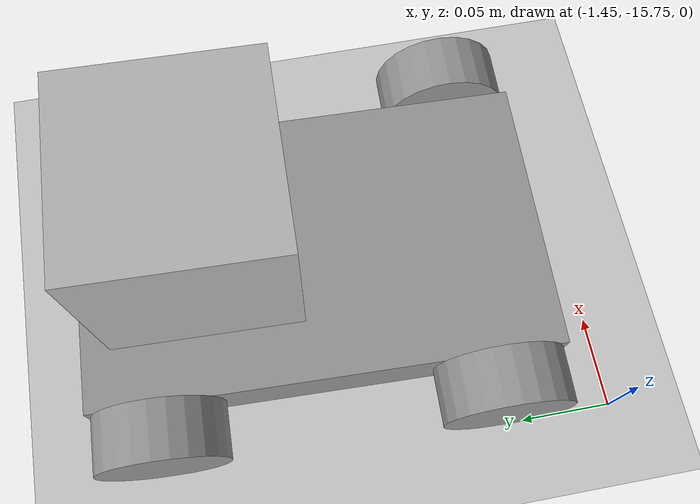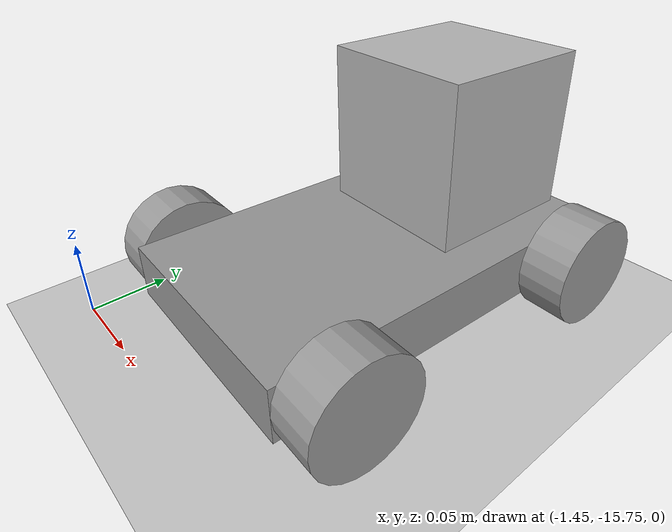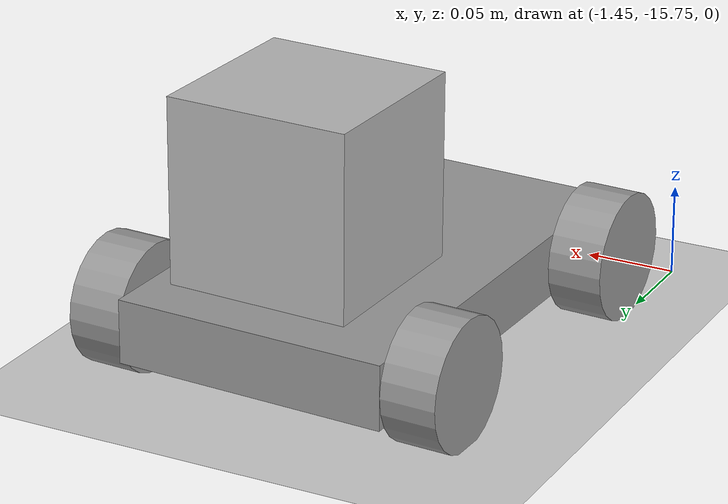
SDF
<sdf version="1.6">
 <world name="default">
  <model name="ground_plane">
   <static>1</static>
   <link name="link">
    <collision name="collision">
     <geometry><plane><normal>0 0 1</normal><size>100 100</size></plane></geometry>
     <surface><friction><ode><mu>100</mu><mu2>50</mu2></ode></friction></surface>
    </collision>
    <visual name="visual">
     <cast_shadows>0</cast_shadows>
     <geometry><plane><normal>0 0 1</normal><size>100 100</size></plane></geometry>
     <material>
      <script><uri>file://media/materials/scripts/gazebo.material</uri><name>Gazebo/Grey</name></script>
     </material>
    </visual>
   </link>
  </model>
  <model name="robotic_car_0">
   <link name="link_2_clone">
    <pose>0.080306 0.090789 -0.004032 1.5707 -0 0</pose>
    <inertial>
     <mass>1</mass>
     <inertia><ixx>0.145833</ixx><ixy>0</ixy><ixz>0</ixz><iyy>0.145833</iyy><iyz>0</iyz><izz>0.125</izz></inertia>
    </inertial>
    <visual name="visual">
     <geometry><cylinder><radius>0.035</radius><length>0.03</length></cylinder></geometry>
     <material>
      <lighting>1</lighting>
      <script><uri>file://media/materials/scripts/gazebo.material</uri><name>Gazebo/Grey</name></script>
      <shader type="pixel"><normal_map>__default__</normal_map></shader>
      <ambient>0.3 0.3 0.3 1</ambient>
      <diffuse>0.7 0.7 0.7 1</diffuse>
      <specular>0.01 0.01 0.01 1</specular>
      <emissive>0 0 0 1</emissive>
     </material>
    </visual>
    <collision name="collision">
     <geometry><cylinder><radius>0.035</radius><length>0.03</length></cylinder></geometry>
     <surface>
      <friction>
       <ode><mu>1</mu><mu2>1</mu2><fdir1>0 0 0</fdir1><slip1>0</slip1><slip2>0</slip2></ode>
       <torsional>
        <coefficient>1</coefficient>
        <patch_radius>0</patch_radius>
        <surface_radius>0</surface_radius>
        <use_patch_radius>1</use_patch_radius>
        <ode><slip>0</slip></ode>
       </torsional>
      </friction>
      <bounce><restitution_coefficient>0</restitution_coefficient><threshold>1e+06</threshold></bounce>
      <contact>
       <collide_without_contact>0</collide_without_contact>
       <collide_without_contact_bitmask>1</collide_without_contact_bitmask>
       <collide_bitmask>1</collide_bitmask>
       <ode>
        <soft_cfm>0</soft_cfm>
        <soft_erp>0.2</soft_erp>
        <kp>1e+13</kp>
        <kd>1</kd>
        <max_vel>0.01</max_vel>
        <min_depth>0</min_depth>
       </ode>
       <bullet>
        <split_impulse>1</split_impulse>
        <split_impulse_penetration_threshold>-0.01</split_impulse_penetration_threshold>
        <soft_cfm>0</soft_cfm>
        <soft_erp>0.2</soft_erp>
        <kp>1e+13</kp>
        <kd>1</kd>
       </bullet>
      </contact>
     </surface>
    </collision>
   </link>
   <link name="link_2_clone_0">
    <pose>-0.099695 0.090789 -0.004032 1.5707 -0 0</pose>
    <inertial>
     <mass>1</mass>
     <inertia><ixx>0.145833</ixx><ixy>0</ixy><ixz>0</ixz><iyy>0.145833</iyy><iyz>0</iyz><izz>0.125</izz></inertia>
    </inertial>
    <visual name="visual">
     <geometry><cylinder><radius>0.035</radius><length>0.03</length></cylinder></geometry>
     <material>
      <lighting>1</lighting>
      <script><uri>file://media/materials/scripts/gazebo.material</uri><name>Gazebo/Grey</name></script>
      <shader type="pixel"><normal_map>__default__</normal_map></shader>
      <ambient>0.3 0.3 0.3 1</ambient>
      <diffuse>0.7 0.7 0.7 1</diffuse>
      <specular>0.01 0.01 0.01 1</specular>
      <emissive>0 0 0 1</emissive>
     </material>
    </visual>
    <collision name="collision">
     <geometry><cylinder><radius>0.035</radius><length>0.03</length></cylinder></geometry>
     <surface>
      <friction>
       <ode><mu>1</mu><mu2>1</mu2><fdir1>0 0 0</fdir1><slip1>0</slip1><slip2>0</slip2></ode>
       <torsional>
        <coefficient>1</coefficient>
        <patch_radius>0</patch_radius>
        <surface_radius>0</surface_radius>
        <use_patch_radius>1</use_patch_radius>
        <ode><slip>0</slip></ode>
       </torsional>
      </friction>
      <bounce><restitution_coefficient>0</restitution_coefficient><threshold>1e+06</threshold></bounce>
      <contact>
       <collide_without_contact>0</collide_without_contact>
       <collide_without_contact_bitmask>1</collide_without_contact_bitmask>
       <collide_bitmask>1</collide_bitmask>
       <ode>
        <soft_cfm>0</soft_cfm>
        <soft_erp>0.2</soft_erp>
        <kp>1e+13</kp>
        <kd>1</kd>
        <max_vel>0.01</max_vel>
        <min_depth>0</min_depth>
       </ode>
       <bullet>
        <split_impulse>1</split_impulse>
        <split_impulse_penetration_threshold>-0.01</split_impulse_penetration_threshold>
        <soft_cfm>0</soft_cfm>
        <soft_erp>0.2</soft_erp>
        <kp>1e+13</kp>
        <kd>1</kd>
       </bullet>
      </contact>
     </surface>
    </collision>
   </link>
   <link name="link_2_clone_1">
    <pose>-0.099695 -0.089218 -0.004032 1.5707 -0 0</pose>
    <inertial>
     <mass>1</mass>
     <inertia><ixx>0.145833</ixx><ixy>0</ixy><ixz>0</ixz><iyy>0.145833</iyy><iyz>0</iyz><izz>0.125</izz></inertia>
    </inertial>
    <visual name="visual">
     <geometry><cylinder><radius>0.035</radius><length>0.03</length></cylinder></geometry>
     <material>
      <lighting>1</lighting>
      <script><uri>file://media/materials/scripts/gazebo.material</uri><name>Gazebo/Grey</name></script>
      <shader type="pixel"><normal_map>__default__</normal_map></shader>
      <ambient>0.3 0.3 0.3 1</ambient>
      <diffuse>0.7 0.7 0.7 1</diffuse>
      <specular>0.01 0.01 0.01 1</specular>
      <emissive>0 0 0 1</emissive>
     </material>
    </visual>
    <collision name="collision">
     <geometry><cylinder><radius>0.035</radius><length>0.03</length></cylinder></geometry>
     <surface>
      <friction>
       <ode><mu>1</mu><mu2>1</mu2><fdir1>0 0 0</fdir1><slip1>0</slip1><slip2>0</slip2></ode>
       <torsional>
        <coefficient>1</coefficient>
        <patch_radius>0</patch_radius>
        <surface_radius>0</surface_radius>
        <use_patch_radius>1</use_patch_radius>
        <ode><slip>0</slip></ode>
       </torsional>
      </friction>
      <bounce><restitution_coefficient>0</restitution_coefficient><threshold>1e+06</threshold></bounce>
      <contact>
       <collide_without_contact>0</collide_without_contact>
       <collide_without_contact_bitmask>1</collide_without_contact_bitmask>
       <collide_bitmask>1</collide_bitmask>
       <ode>
        <soft_cfm>0</soft_cfm>
        <soft_erp>0.2</soft_erp>
        <kp>1e+13</kp>
        <kd>1</kd>
        <max_vel>0.01</max_vel>
        <min_depth>0</min_depth>
       </ode>
       <bullet>
        <split_impulse>1</split_impulse>
        <split_impulse_penetration_threshold>-0.01</split_impulse_penetration_threshold>
        <soft_cfm>0</soft_cfm>
        <soft_erp>0.2</soft_erp>
        <kp>1e+13</kp>
        <kd>1</kd>
       </bullet>
      </contact>
     </surface>
    </collision>
   </link>
   <link name="link_2_clone_1_clone">
    <pose>0.080306 -0.089218 -0.004032 1.5707 -0 0</pose>
    <inertial>
     <mass>1</mass>
     <inertia><ixx>0.145833</ixx><ixy>0</ixy><ixz>0</ixz><iyy>0.145833</iyy><iyz>0</iyz><izz>0.125</izz></inertia>
    </inertial>
    <visual name="visual">
     <geometry><cylinder><radius>0.035</radius><length>0.03</length></cylinder></geometry>
     <material>
      <lighting>1</lighting>
      <script><uri>file://media/materials/scripts/gazebo.material</uri><name>Gazebo/Grey</name></script>
      <shader type="pixel"><normal_map>__default__</normal_map></shader>
      <ambient>0.3 0.3 0.3 1</ambient>
      <diffuse>0.7 0.7 0.7 1</diffuse>
      <specular>0.01 0.01 0.01 1</specular>
      <emissive>0 0 0 1</emissive>
     </material>
    </visual>
    <collision name="collision">
     <geometry><cylinder><radius>0.035</radius><length>0.03</length></cylinder></geometry>
     <surface>
      <friction>
       <ode><mu>1</mu><mu2>1</mu2><fdir1>0 0 0</fdir1><slip1>0</slip1><slip2>0</slip2></ode>
       <torsional>
        <coefficient>1</coefficient>
        <patch_radius>0</patch_radius>
        <surface_radius>0</surface_radius>
        <use_patch_radius>1</use_patch_radius>
        <ode><slip>0</slip></ode>
       </torsional>
      </friction>
      <bounce><restitution_coefficient>0</restitution_coefficient><threshold>1e+06</threshold></bounce>
      <contact>
       <collide_without_contact>0</collide_without_contact>
       <collide_without_contact_bitmask>1</collide_without_contact_bitmask>
       <collide_bitmask>1</collide_bitmask>
       <ode>
        <soft_cfm>0</soft_cfm>
        <soft_erp>0.2</soft_erp>
        <kp>1e+13</kp>
        <kd>1</kd>
        <max_vel>0.01</max_vel>
        <min_depth>0</min_depth>
       </ode>
       <bullet>
        <split_impulse>1</split_impulse>
        <split_impulse_penetration_threshold>-0.01</split_impulse_penetration_threshold>
        <soft_cfm>0</soft_cfm>
        <soft_erp>0.2</soft_erp>
        <kp>1e+13</kp>
        <kd>1</kd>
       </bullet>
      </contact>
     </surface>
    </collision>
   </link>
   <link name="link_3_clone_0">
    <pose>-0.009695 0.000786 -0.004032 0 -0 0</pose>
    <inertial>
     <mass>1</mass>
     <inertia>
      <ixx>0.166667</ixx>
      <ixy>0</ixy>
      <ixz>0</ixz>
      <iyy>0.166667</iyy>
      <iyz>0</iyz>
      <izz>0.166667</izz>
     </inertia>
    </inertial>
    <visual name="visual">
     <geometry><box><size>0.25 0.15 0.035</size></box></geometry>
     <material>
      <lighting>1</lighting>
      <script><uri>file://media/materials/scripts/gazebo.material</uri><name>Gazebo/Grey</name></script>
      <shader type="pixel"><normal_map>__default__</normal_map></shader>
      <ambient>0.3 0.3 0.3 1</ambient>
      <diffuse>0.7 0.7 0.7 1</diffuse>
      <specular>0.01 0.01 0.01 1</specular>
      <emissive>0 0 0 1</emissive>
     </material>
    </visual>
    <collision name="collision">
     <geometry><box><size>0.25 0.15 0.035</size></box></geometry>
     <surface>
      <friction>
       <ode><mu>1</mu><mu2>1</mu2><fdir1>0 0 0</fdir1><slip1>0</slip1><slip2>0</slip2></ode>
       <torsional>
        <coefficient>1</coefficient>
        <patch_radius>0</patch_radius>
        <surface_radius>0</surface_radius>
        <use_patch_radius>1</use_patch_radius>
        <ode><slip>0</slip></ode>
       </torsional>
      </friction>
      <bounce><restitution_coefficient>0</restitution_coefficient><threshold>1e+06</threshold></bounce>
      <contact>
       <collide_without_contact>0</collide_without_contact>
       <collide_without_contact_bitmask>1</collide_without_contact_bitmask>
       <collide_bitmask>1</collide_bitmask>
       <ode>
        <soft_cfm>0</soft_cfm>
        <soft_erp>0.2</soft_erp>
        <kp>1e+13</kp>
        <kd>1</kd>
        <max_vel>0.01</max_vel>
        <min_depth>0</min_depth>
       </ode>
       <bullet>
        <split_impulse>1</split_impulse>
        <split_impulse_penetration_threshold>-0.01</split_impulse_penetration_threshold>
        <soft_cfm>0</soft_cfm>
        <soft_erp>0.2</soft_erp>
        <kp>1e+13</kp>
        <kd>1</kd>
       </bullet>
      </contact>
     </surface>
    </collision>
   </link>
   <model name="depth_camera">
    <link name="link">
     <pose>0 0 0.05 0 -0 0</pose>
     <inertial>
      <mass>0.1</mass>
      <inertia>
       <ixx>0.000166667</ixx>
       <iyy>0.000166667</iyy>
       <izz>0.000166667</izz>
       <ixy>0</ixy>
       <ixz>0</ixz>
       <iyz>0</iyz>
      </inertia>
     </inertial>
     <collision name="collision"><geometry><box><size>0.1 0.1 0.1</size></box></geometry></collision>
     <visual name="visual"><geometry><box><size>0.1 0.1 0.1</size></box></geometry></visual>
     <sensor name="camera" type="depth">
      <camera name="__default__">
       <horizontal_fov>1.047</horizontal_fov>
       <image><width>320</width><height>240</height></image>
       <clip><near>0.1</near><far>100</far></clip>
      </camera>
      <always_on>1</always_on>
      <update_rate>30</update_rate>
      <visualize>1</visualize>
     </sensor>
    </link>
    <pose>0.048473 -0.003928 0.020159 0 -0 0</pose>
   </model>
   <joint name="link_3_clone_0_JOINT_2" type="revolute">
    <parent>link_3_clone_0</parent>
    <child>link_2_clone_1_clone</child>
    <axis>
     <xyz>0 0 1</xyz>
     <use_parent_model_frame>0</use_parent_model_frame>
     <limit>
      <lower>-1.79769e+308</lower>
      <upper>1.79769e+308</upper>
      <effort>-1</effort>
      <velocity>-1</velocity>
     </limit>
     <dynamics>
      <spring_reference>0</spring_reference>
      <spring_stiffness>0</spring_stiffness>
      <damping>0</damping>
      <friction>0</friction>
     </dynamics>
    </axis>
    <physics>
     <ode><limit><cfm>0</cfm><erp>0.2</erp></limit><suspension><cfm>0</cfm><erp>0.2</erp></suspension></ode>
    </physics>
   </joint>
   <joint name="link_3_clone_0_JOINT_3" type="revolute">
    <parent>link_3_clone_0</parent>
    <child>link_2_clone</child>
    <axis>
     <xyz>0 0 1</xyz>
     <use_parent_model_frame>0</use_parent_model_frame>
     <limit>
      <lower>-1.79769e+308</lower>
      <upper>1.79769e+308</upper>
      <effort>-1</effort>
      <velocity>-1</velocity>
     </limit>
     <dynamics>
      <spring_reference>0</spring_reference>
      <spring_stiffness>0</spring_stiffness>
      <damping>0</damping>
     </dynamics>
    </axis>
    <physics>
     <ode><limit><cfm>0</cfm><erp>0.2</erp></limit><suspension><cfm>0</cfm><erp>0.2</erp></suspension></ode>
    </physics>
   </joint>
   <joint name="link_3_clone_0_JOINT_4" type="revolute">
    <parent>link_3_clone_0</parent>
    <child>link_2_clone_1</child>
    <axis>
     <xyz>0 0 1</xyz>
     <use_parent_model_frame>0</use_parent_model_frame>
     <limit>
      <lower>-1.79769e+308</lower>
      <upper>1.79769e+308</upper>
      <effort>-1</effort>
      <velocity>-1</velocity>
     </limit>
     <dynamics>
      <spring_reference>0</spring_reference>
      <spring_stiffness>0</spring_stiffness>
      <damping>0</damping>
     </dynamics>
    </axis>
    <physics>
     <ode><limit><cfm>0</cfm><erp>0.2</erp></limit><suspension><cfm>0</cfm><erp>0.2</erp></suspension></ode>
    </physics>
   </joint>
   <joint name="link_3_clone_0_JOINT_5" type="revolute">
    <parent>link_3_clone_0</parent>
    <child>link_2_clone_0</child>
    <axis>
     <xyz>0 0 1</xyz>
     <use_parent_model_frame>0</use_parent_model_frame>
     <limit>
      <lower>-1.79769e+308</lower>
      <upper>1.79769e+308</upper>
      <effort>-1</effort>
      <velocity>-1</velocity>
     </limit>
     <dynamics>
      <spring_reference>0</spring_reference>
      <spring_stiffness>0</spring_stiffness>
      <damping>0</damping>
      <friction>0</friction>
     </dynamics>
    </axis>
    <physics>
     <ode><limit><cfm>0</cfm><erp>0.2</erp></limit><suspension><cfm>0</cfm><erp>0.2</erp></suspension></ode>
    </physics>
   </joint>
   <joint name="link_3_clone_0_JOINT_6" type="fixed">
    <parent>link_3_clone_0</parent>
    <child>depth_camera::link</child>
    <physics>
     <ode><limit><cfm>0</cfm><erp>0.2</erp></limit><suspension><cfm>0</cfm><erp>0.2</erp></suspension></ode>
    </physics>
   </joint>
   <static>0</static>
   <pose>-1.34138 -15.5897 0.038253 -0.009712 -0.000317 1.5394</pose>
  </model>
 </world>
</sdf>
